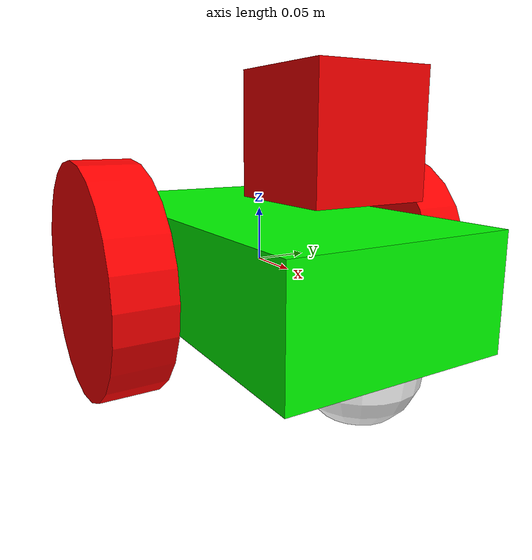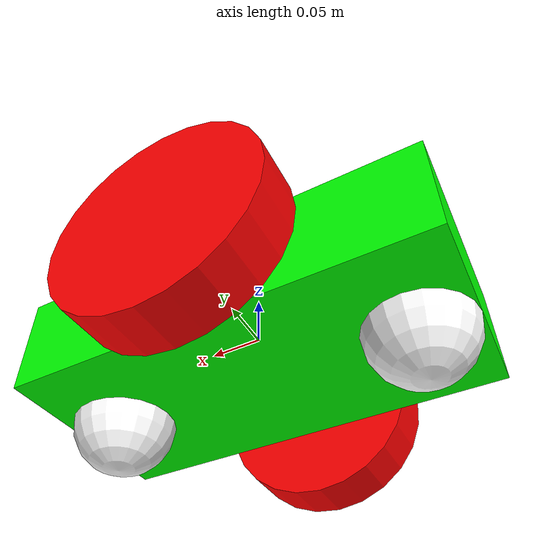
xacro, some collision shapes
<?xml version="1.0"?>
<robot xmlns:xacro="http://www.ros.org/wiki/xacro" name="diff_robot">

    <!-- find then the name of the package then the path in the package to include it -->
    <xacro:include filename="$(find diff_robot_description)/urdf/diff_robot_drive_controller.gazebo"/>

    <!--dummy robot base-->
    <link name="robot_footprint">
    </link>

    <joint name="robot_footprint_joint" type="fixed">
        <parent link="robot_footprint"/>
        <child link="base_link"/>
        <origin xyz="0.0 0.0 0.0" rpy="0.0 0.0 0.0"/>
    </joint>

    <!--start of the base -->
    <link name="base_link">
        <inertial>
        <!-- not needed now to change-->
            <origin xyz="0.0 0.0 0.0" rpy="0.0 0.0 0.0"/>
            <mass value="5.0"/>
            <inertia ixx="0.0" ixy="0.0" ixz="0.0" iyy="0.0" iyz="0.0" izz="0.0"/>
        </inertial>
        <visual name="base_link_visual">
            <origin xyz="0.0 0.0 0.0" rpy="0.0 0.0 0.0"/>
            <geometry>
                <!-- x y and z (length height weidth )-->
                <box size="0.4 0.2 0.1"/>
            </geometry>
            <material name="">
                <color rgba="0.0 1.0 0.0 1.0"/>
                <texture filename=""/>
            </material>
        </visual>
        <collision>
            <origin xyz="0.0 0.0 0.0" rpy="0.0 0.0 0.0"/>
            <geometry>
                <box size="0.4 0.2 0.1"/>
            </geometry>
        </collision>

    </link>

    <link name="left_wheel">
        <inertial>
            <origin xyz="0.0 0.0 0.0" rpy="0.0 0.0 0.0"/>
            <mass value="5.0"/>
            <inertia ixx="0.1" ixy="0.0" ixz="0.0" iyy="0.1" iyz="0.0" izz="0.1"/>
        </inertial>
        <visual name="left_wheel_visual">
            <origin xyz="0.0 0.0 0.0" rpy="0.0 0.0 0.0"/>
            <geometry>
                <!-- radius and length unit is meter-->
                <cylinder radius="0.1" length="0.05"/>
            </geometry>
            <material name="">
                <color rgba="1.0 0.0 0.0 1.0"/>
                <texture filename=""/>
            </material>
        </visual>
        <collision>
            <origin xyz="0.0 0.0 0.0" rpy="0.0 0.0 0.0"/>
            <geometry>
                <cylinder radius="0.1" length="0.05"/>
            </geometry>
        </collision>
    </link>

    <joint name="left_wheel_joint" type="continuous">
        <origin xyz="0.0 0.15 0.0" rpy="0.0 1.5707963268 1.5707963268"/>
        <parent link="base_link"/>
        <child link="left_wheel"/>
        <axis xyz="0.0 0.0 1.0"/>
        <limit lower="0.0" upper="0.0" effort="0.0" velocity="0.0"/>
    </joint>

    <link name="right_wheel">
        <inertial>
            <origin xyz="0.0 0.0 0.0" rpy="0.0 0.0 0.0"/>
            <mass value="5.0"/>
            <inertia ixx="0.1" ixy="0.0" ixz="0.0" iyy="0.1" iyz="0.0" izz="0.1"/>
        </inertial>
        <visual name="right_wheel_visual">
            <origin xyz="0.0 0.0 0.0" rpy="0.0 0.0 0.0"/>
            <geometry>
                <!-- radius and length unit is meter-->
                <cylinder radius="0.1" length="0.05"/>
            </geometry>
            <material name="">
                <color rgba="1.0 0.0 0.0 1.0"/>
                <texture filename=""/>
            </material>
        </visual>
        <collision>
            <origin xyz="0.0 0.0 0.0" rpy="0.0 0.0 0.0"/>
            <geometry>
                <cylinder radius="0.1" length="0.05"/>
            </geometry>
        </collision>
    </link>

    <joint name="right_wheel_joint" type="continuous">
        <origin xyz="0.0 -0.15 0.0" rpy="0.0 1.5707963268 1.5707963268"/>
        <parent link="base_link"/>
        <child link="right_wheel"/>
        <axis xyz="0.0 0.0 1.0"/>
        <limit lower="0.0" upper="0.0" effort="0.0" velocity="0.0"/>
    </joint>

    <link name="front_caster">
        <inertial>
            <origin xyz="0.0 0.0 0.0" rpy="0.0 0.0 0.0"/>
            <mass value="1.0"/>
            <inertia ixx="0.0" ixy="0.0" ixz="0.0" iyy="0.0" iyz="0.0" izz="0.0"/>
        </inertial>
        <visual name="front_caster_visual">
            <origin xyz="0.0 0.0 0.0" rpy="0.0 0.0 0.0"/>
            <geometry>
                <sphere radius="0.0499"/>
            </geometry>
            <material name="">
                <color rgba="1.0 1.0 1.0 1.0"/>
                <texture filename=""/>
            </material>
        </visual>
        <collision>
            <origin xyz="0.0 0.0 0.0" rpy="0.0 0.0 0.0"/>
            <geometry>
                <sphere radius="0.0499"/>
            </geometry>
        </collision>
    </link>

    <joint name="front_caster_joint" type="fixed">
        <origin xyz="0.15 0.0 -0.05" rpy="0.0 0.0 0.0"/>
        <parent link="base_link"/>
        <child link="front_caster"/>
        <axis xyz="0.0 0.0 0.0"/>
        <limit lower="0.0" upper="0.0" effort="0.0" velocity="0.0"/>
    </joint>

    <link name="back_caster">
        <inertial>
            <origin xyz="0.0 0.0 0.0" rpy="0.0 0.0 0.0"/>
            <mass value="1.0"/>
            <inertia ixx="0.0" ixy="0.0" ixz="0.0" iyy="0.0" iyz="0.0" izz="0.0"/>
        </inertial>
        <visual name="back_caster_visual">
            <origin xyz="0.0 0.0 0.0" rpy="0.0 0.0 0.0"/>
            <geometry>
                <sphere radius="0.0499"/>
            </geometry>
            <material name="">
                <color rgba="1.0 1.0 1.0 1.0"/>
                <texture filename=""/>
            </material>
        </visual>
        <collision>
            <origin xyz="0.0 0.0 0.0" rpy="0.0 0.0 0.0"/>
            <geometry>
                <sphere radius="0.0499"/>
            </geometry>
        </collision>
    </link>

    <joint name="back_caster_joint" type="fixed">
        <origin xyz="-0.15 0.0 -0.05" rpy="0.0 0.0 0.0"/>
        <parent link="base_link"/>
        <child link="back_caster"/>
        <axis xyz="0.0 0.0 0.0"/>
        <limit lower="0.0" upper="0.0" effort="0.0" velocity="0.0"/>
    </joint>

    <link name="lidar_link">
        <inertial>
            <origin xyz="0.0 0.0 0.0" rpy="0.0 0.0 0.0"/>
            <mass value="0.1"/>
            <inertia ixx="0.0" ixy="0.0" ixz="0.0" iyy="0.0" iyz="0.0" izz="0.0"/>
        </inertial>
        <visual name="lidar_link_visual">
            <origin xyz="0.0 0.0 0.0" rpy="0.0 0.0 0.0"/>
            <geometry>
                <mesh filename="package://diff_robot_description/meshes/lidar_link.STL"/>
            </geometry>
            <material name="">
                <color rgba="1.0 0.0 0.0 1.0"/>
                <texture filename=""/>
            </material>
        </visual>
        <collision>
            <origin xyz="0.0 0.0 0.0" rpy="0.0 0.0 0.0"/>
            <geometry>
                <box size="0.1 0.1 0.1"/>
            </geometry>
        </collision>
    </link>

    <joint name="lidar_joint" type="fixed">
        <origin xyz="0.11 0.0 0.12" rpy="1.5708 0.0 0.0"/>
        <parent link="base_link"/>
        <child link="lidar_link"/>
    </joint>

    <link name="laser_data_link">

    </link>

    <joint name="laser_data_joint" type="fixed">
        <origin xyz="0.0 0.0 0.0" rpy="0.0 -1.5708 -1.5708"/>
        <parent link="lidar_link"/>
        <child link="laser_data_link"/>
    </joint>
</robot>
